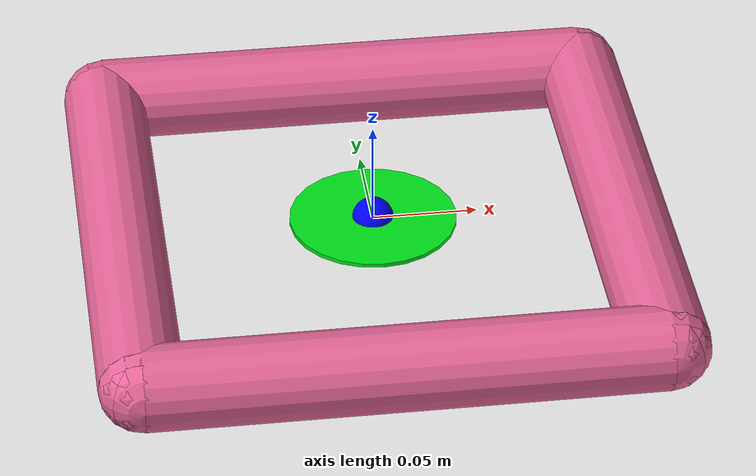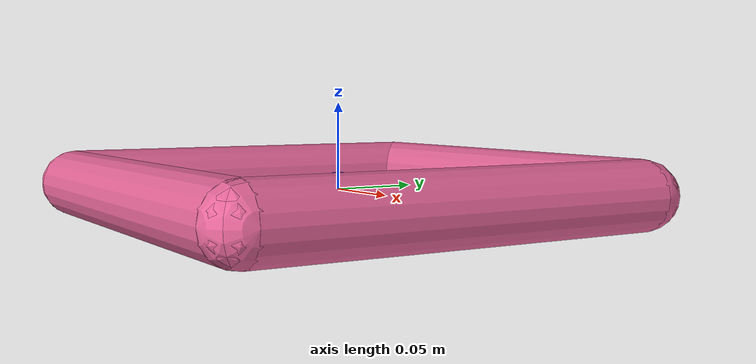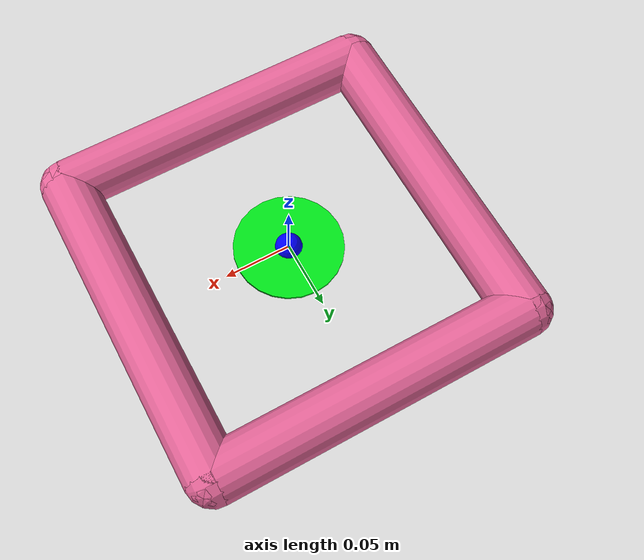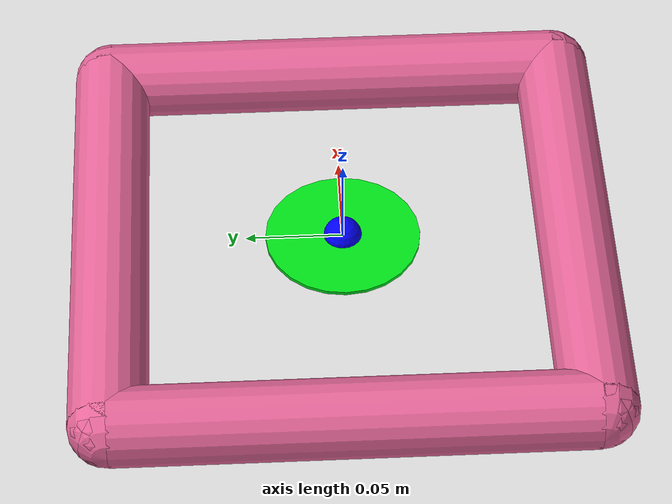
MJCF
<mujoco model="water_maze">
    <compiler inertiafromgeom="true" angle="radian" coordinate="local" />
    <option timestep="0.01" gravity="0 0 0" iterations="20" integrator="Euler" />
    <default>
        <joint limited="false" damping="1" />
        <geom contype="2" conaffinity="1" condim="1" friction=".5 .1 .1" density="1000" margin="0.002" />
    </default>

    <worldbody>
        <!-- Pointmass -->
        <body name="particle" pos="0 0 0">
            <geom name="particle_geom" type="sphere" size="0.01" rgba="0.0 0.0 1.0 1" contype="1"/>
            <site name="particle_site" pos="0 0 0" size="0.01" />
            <joint name="ball_x" type="slide" pos="0 0 0" axis="1 0 0" />
            <joint name="ball_y" type="slide" pos="0 0 0" axis="0 1 0" />
        </body>

        <!-- Target -->
        <body name="target" pos="0 0 0">
            <geom conaffinity="0" name="target_geom" type="cylinder" size=".04
             .001" rgba="0 0.9 0.1 1" contype="0"/>
            <joint name="target_x" type="slide" pos="0 0 0" axis="1 0 0" />
            <joint name="target_y" type="slide" pos="0 0 0" axis="0 1 0" />
        </body>

        <!-- Arena -->
        <geom conaffinity="1" fromto="-.12 -.12 .0 .12 -.12 .0" name="sideS"
              rgba="0.9 0.4 0.6 1" size=".02" type="capsule"/>
        <geom conaffinity="1" fromto=" .12 -.12 .0 .12  .12 .0" name="sideE"
              rgba="0.9 0.4 0.6 1" size=".02" type="capsule"/>
        <geom conaffinity="1" fromto="-.12  .12 .0 .12  .12 .0" name="sideN"
              rgba="0.9 0.4 0.6 1" size=".02" type="capsule"/>
        <geom conaffinity="1" fromto="-.12 -.12 .0 -.12 .12 .0" name="sideW"
              rgba="0.9 0.4 0.6 1" size=".02" type="capsule"/>
    </worldbody>

    <actuator>
        <motor joint="ball_x" ctrlrange="-1.0 1.0" ctrllimited="true"/>
        <motor joint="ball_y" ctrlrange="-1.0 1.0" ctrllimited="true"/>
        <motor joint="target_x" ctrlrange="-1.0 1.0" ctrllimited="true"/>
        <motor joint="target_y" ctrlrange="-1.0 1.0" ctrllimited="true"/>
    </actuator>
</mujoco>
